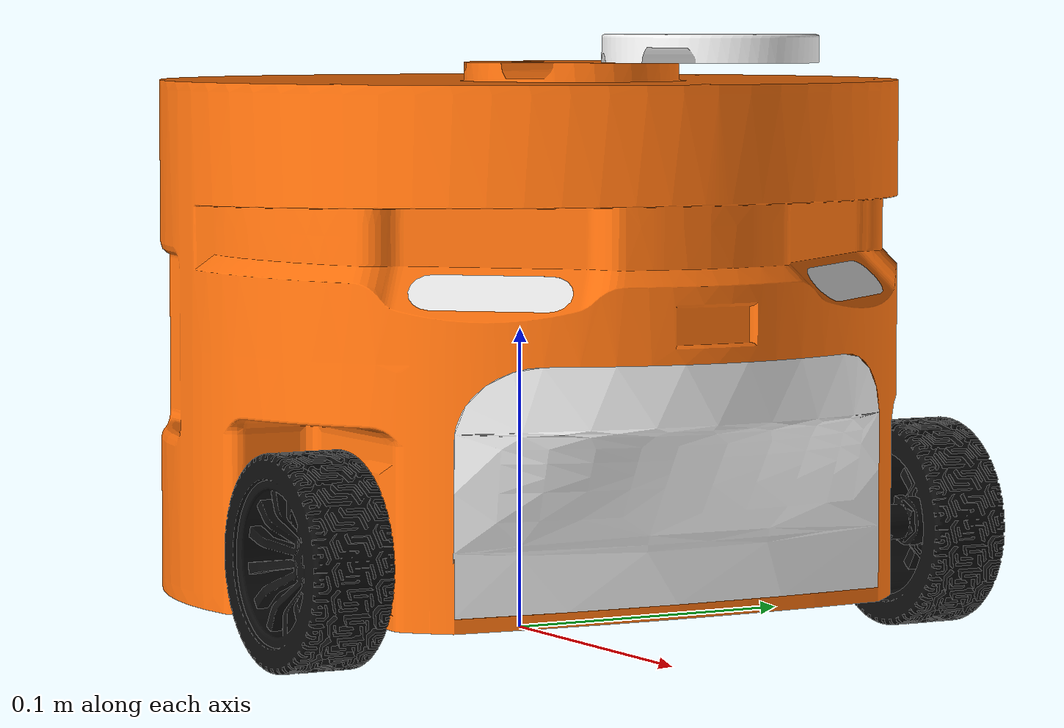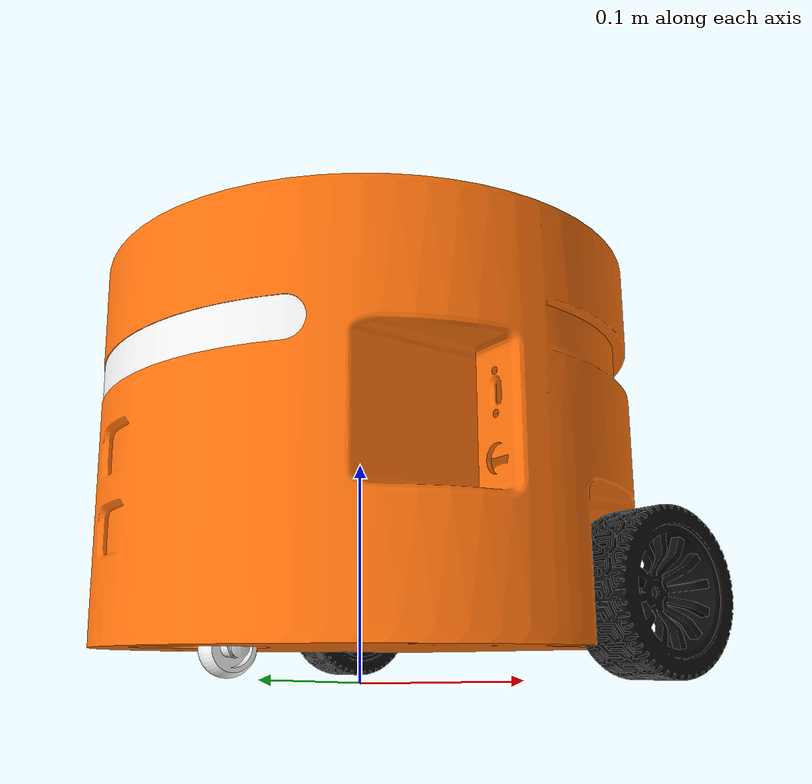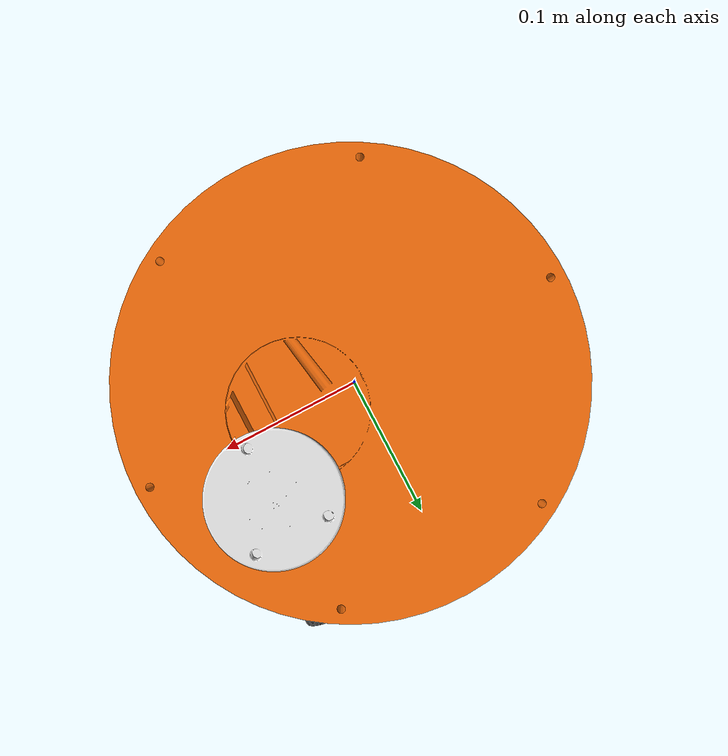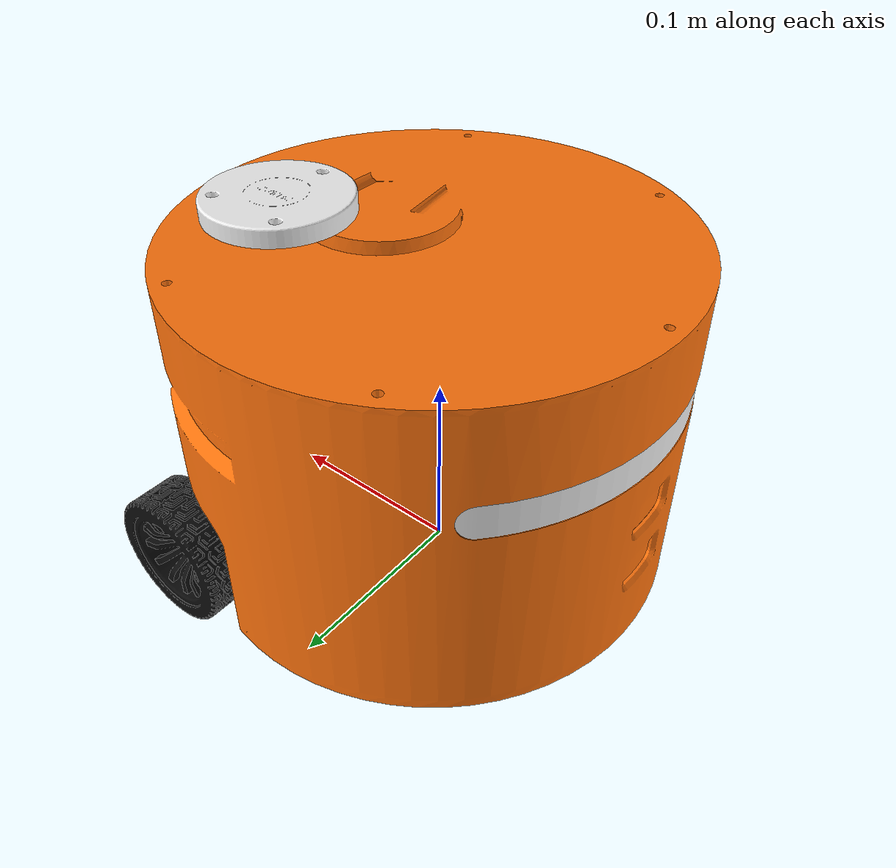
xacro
<?xml version="1.0" ?>
<robot name="NavProMini" xmlns:xacro="http://www.ros.org/wiki/xacro">

  <xacro:include filename="$(find navpromini_description)/urdf/materials.xacro" />
  <xacro:include filename="$(find navpromini_description)/urdf/NavProMini.trans" />

  <!-- Motor limits: 10 kg.cm = 0.981 N.m, 300 RPM = 31.416 rad/s -->
  <xacro:property name="motor_effort" value="0.981"/>
  <xacro:property name="motor_velocity" value="31.416"/>
  <xacro:property name="wheel_radius" value="0.0325"/>  <!-- 65 mm diameter -->
  <xacro:property name="wheel_width" value="0.028"/>

  <!-- Multi-robot Gazebo: launch passes topic_prefix:=/robot1 frame_prefix:=robot1/
       Single-robot defaults keep absolute /cmd_vel, /odom, /scan. -->
  <xacro:arg name="robot_namespace" default=""/>
  <xacro:arg name="topic_prefix" default=""/>
  <xacro:arg name="frame_prefix" default=""/>
  <xacro:property name="topic_prefix" value="$(arg topic_prefix)"/>
  <xacro:property name="frame_prefix" value="$(arg frame_prefix)"/>

  <!-- Lidar pose in base_link (+X forward). Yaw is tunable at launch:
       xacro ... lidar_yaw:=±1.5708 if /scan is 90° off vs driving direction. -->
  <xacro:arg name="lidar_yaw" default="0.0"/>
  <xacro:property name="lidar_yaw" value="$(arg lidar_yaw)"/>

  <!-- After topic/frame prefix properties so NavProMini.gazebo can use them. -->
  <xacro:include filename="$(find navpromini_description)/urdf/NavProMini.gazebo" />
  <!-- chassis joint origin (0.001341, -0.032462, 0.188795) rotated by +90° yaw -->
  <xacro:property name="lidar_x" value="0.032462"/>
  <xacro:property name="lidar_y" value="0.001341"/>
  <xacro:property name="lidar_z" value="0.188795"/>

  <!-- ROS base_link: +X forward, +Y left. Mass lives here for stable physics. -->
  <link name="base_link">
    <inertial>
      <!-- Between drive wheels (x≈0.067) and rear caster (x≈-0.074) -->
      <origin xyz="0.02 0.0 0.05" rpy="0 0 0"/>
      <!-- Half mass for smoother Gazebo multi-robot sim -->
      <mass value="2.5"/>
      <inertia ixx="0.02" iyy="0.02" izz="0.025" ixy="0.0" iyz="0.0" ixz="0.0"/>
    </inertial>
  </link>

  <!-- CAD mesh; rotated so CAD -Y (front) aligns with base_link +X -->
  <link name="chassis">
    <inertial>
      <origin xyz="0 0 0" rpy="0 0 0"/>
      <mass value="0.01"/>
      <inertia ixx="1e-6" iyy="1e-6" izz="1e-6" ixy="0" iyz="0" ixz="0"/>
    </inertial>
    <visual>
      <origin xyz="0 0 0" rpy="0 0 0"/>
      <geometry>
        <mesh filename="package://navpromini_description/meshes/base_link.stl" scale="0.001 0.001 0.001"/>
      </geometry>
      <material name="orange"/>
    </visual>
    <collision>
      <origin xyz="0 0 0" rpy="0 0 0"/>
      <geometry>
        <mesh filename="package://navpromini_description/meshes/base_link.stl" scale="0.001 0.001 0.001"/>
      </geometry>
    </collision>
  </link>

  <joint name="chassis_joint" type="fixed">
    <parent link="base_link"/>
    <child link="chassis"/>
    <origin xyz="0 0 0" rpy="0 0 1.57079632679"/>
  </joint>

  <link name="leftWheel_1">
    <inertial>
      <origin xyz="0 0 0" rpy="0 0 0"/>
      <mass value="0.05"/>
      <inertia ixx="1.4e-05" iyy="2.4e-05" izz="1.4e-05" ixy="0" iyz="0" ixz="0"/>
    </inertial>
    <visual>
      <origin xyz="-0.09484 0.066804 -0.036326" rpy="0 0 0"/>
      <geometry>
        <mesh filename="package://navpromini_description/meshes/leftWheel_1.stl" scale="0.001 0.001 0.001"/>
      </geometry>
      <material name="black"/>
    </visual>
    <!-- Wheels: cylinder collision only (not mesh) -->
    <collision>
      <origin xyz="0 0 0" rpy="0 1.57079632679 0"/>
      <geometry>
        <cylinder radius="${wheel_radius}" length="${wheel_width}"/>
      </geometry>
    </collision>
  </link>

  <link name="rightWheel_1">
    <inertial>
      <origin xyz="0 0 0" rpy="0 0 0"/>
      <mass value="0.05"/>
      <inertia ixx="1.4e-05" iyy="2.4e-05" izz="1.4e-05" ixy="0" iyz="0" ixz="0"/>
    </inertial>
    <visual>
      <origin xyz="0.092161 0.066804 -0.036326" rpy="0 0 0"/>
      <geometry>
        <mesh filename="package://navpromini_description/meshes/rightWheel_1.stl" scale="0.001 0.001 0.001"/>
      </geometry>
      <material name="black"/>
    </visual>
    <collision>
      <origin xyz="0 0 0" rpy="0 1.57079632679 0"/>
      <geometry>
        <cylinder radius="${wheel_radius}" length="${wheel_width}"/>
      </geometry>
    </collision>
  </link>

  <link name="casterWheel_1">
    <inertial>
      <origin xyz="-0.061875 0.147397 -0.028272" rpy="0 0 0"/>
      <mass value="0.05"/>
      <inertia ixx="1e-5" iyy="1e-5" izz="1e-5" ixy="0" iyz="0" ixz="0"/>
    </inertial>
    <visual>
      <origin xyz="-0.063216 0.073146 -0.050051" rpy="0 0 0"/>
      <geometry>
        <mesh filename="package://navpromini_description/meshes/casterWheel_1.stl" scale="0.001 0.001 0.001"/>
      </geometry>
      <material name="white"/>
    </visual>
    <collision>
      <origin xyz="-0.063216 0.073146 -0.050051" rpy="0 0 0"/>
      <geometry>
        <mesh filename="package://navpromini_description/meshes/casterWheel_1.stl" scale="0.001 0.001 0.001"/>
      </geometry>
    </collision>
  </link>

  <link name="FLLC_1">
    <inertial>
      <origin xyz="0 0 0" rpy="0 0 0"/>
      <mass value="0.001"/>
      <inertia ixx="1e-9" iyy="1e-9" izz="1e-9" ixy="0" iyz="0" ixz="0"/>
    </inertial>
    <visual>
      <origin xyz="-0.064518 0.094734 -0.11683" rpy="0 0 0"/>
      <geometry>
        <mesh filename="package://navpromini_description/meshes/FLLC_1.stl" scale="0.001 0.001 0.001"/>
      </geometry>
      <material name="white"/>
    </visual>
    <collision>
      <origin xyz="-0.064518 0.094734 -0.11683" rpy="0 0 0"/>
      <geometry>
        <mesh filename="package://navpromini_description/meshes/FLLC_1.stl" scale="0.001 0.001 0.001"/>
      </geometry>
    </collision>
  </link>

  <link name="FRLC_1">
    <inertial>
      <origin xyz="0 0 0" rpy="0 0 0"/>
      <mass value="0.001"/>
      <inertia ixx="1e-9" iyy="1e-9" izz="1e-9" ixy="0" iyz="0" ixz="0"/>
    </inertial>
    <visual>
      <origin xyz="0.058447 0.090812 -0.122003" rpy="0 0 0"/>
      <geometry>
        <mesh filename="package://navpromini_description/meshes/FRLC_1.stl" scale="0.001 0.001 0.001"/>
      </geometry>
      <material name="white"/>
    </visual>
    <collision>
      <origin xyz="0.058447 0.090812 -0.122003" rpy="0 0 0"/>
      <geometry>
        <mesh filename="package://navpromini_description/meshes/FRLC_1.stl" scale="0.001 0.001 0.001"/>
      </geometry>
    </collision>
  </link>

  <link name="BLC_1">
    <inertial>
      <origin xyz="0 0 0" rpy="0 0 0"/>
      <mass value="0.001"/>
      <inertia ixx="1e-9" iyy="1e-9" izz="1e-9" ixy="0" iyz="0" ixz="0"/>
    </inertial>
    <visual>
      <origin xyz="-0.001742 -0.114701 -0.137576" rpy="0 0 0"/>
      <geometry>
        <mesh filename="package://navpromini_description/meshes/BLC_1.stl" scale="0.001 0.001 0.001"/>
      </geometry>
      <material name="white"/>
    </visual>
    <collision>
      <origin xyz="-0.001742 -0.114701 -0.137576" rpy="0 0 0"/>
      <geometry>
        <mesh filename="package://navpromini_description/meshes/BLC_1.stl" scale="0.001 0.001 0.001"/>
      </geometry>
    </collision>
  </link>

  <link name="lidar_1">
    <inertial>
      <origin xyz="0 0 0" rpy="0 0 0"/>
      <mass value="0.03"/>
      <inertia ixx="1e-5" iyy="1e-5" izz="2e-05" ixy="0" iyz="0" ixz="0"/>
    </inertial>
    <!-- Mesh is CAD/chassis-oriented; rotate +90° so it matches chassis visual. -->
    <visual>
      <origin xyz="-0.001341 0.032462 -0.188795" rpy="0 0 1.57079632679"/>
      <geometry>
        <mesh filename="package://navpromini_description/meshes/lidar_1.stl" scale="0.001 0.001 0.001"/>
      </geometry>
      <material name="white"/>
    </visual>
    <collision>
      <origin xyz="-0.001341 0.032462 -0.188795" rpy="0 0 1.57079632679"/>
      <geometry>
        <mesh filename="package://navpromini_description/meshes/lidar_1.stl" scale="0.001 0.001 0.001"/>
      </geometry>
    </collision>
  </link>

  <link name="FC_1">
    <inertial>
      <origin xyz="0 0 0" rpy="0 0 0"/>
      <mass value="0.01"/>
      <inertia ixx="1e-5" iyy="1e-5" izz="1e-5" ixy="0" iyz="0" ixz="0"/>
    </inertial>
    <visual>
      <origin xyz="-0.001341 0.12528 -0.097326" rpy="0 0 0"/>
      <geometry>
        <mesh filename="package://navpromini_description/meshes/FC_1.stl" scale="0.001 0.001 0.001"/>
      </geometry>
      <material name="white"/>
    </visual>
    <collision>
      <origin xyz="-0.001341 0.12528 -0.097326" rpy="0 0 0"/>
      <geometry>
        <mesh filename="package://navpromini_description/meshes/FC_1.stl" scale="0.001 0.001 0.001"/>
      </geometry>
    </collision>
  </link>

  <!-- Axis +X: +cmd_vel.linear.x matches robot forward (base_link +X) -->
  <joint name="LeftWheelJoint" type="continuous">
    <origin xyz="0.09484 -0.066804 0.036326" rpy="0 0 0"/>
    <parent link="chassis"/>
    <child link="leftWheel_1"/>
    <axis xyz="1 0 0"/>
    <limit effort="${motor_effort}" velocity="${motor_velocity}"/>
    <dynamics damping="0.01" friction="0.0"/>
  </joint>

  <joint name="RightWheelJoint" type="continuous">
    <origin xyz="-0.092161 -0.066804 0.036326" rpy="0 0 0"/>
    <parent link="chassis"/>
    <child link="rightWheel_1"/>
    <axis xyz="1 0 0"/>
    <limit effort="${motor_effort}" velocity="${motor_velocity}"/>
    <dynamics damping="0.01" friction="0.0"/>
  </joint>

  <joint name="CastorJoint" type="fixed">
    <origin xyz="0.063216 -0.073146 0.050051" rpy="0 0 0"/>
    <parent link="chassis"/>
    <child link="casterWheel_1"/>
  </joint>

  <joint name="Rigid1" type="fixed">
    <origin xyz="0.064518 -0.094734 0.11683" rpy="0 0 0"/>
    <parent link="chassis"/>
    <child link="FLLC_1"/>
  </joint>

  <joint name="Rigid2" type="fixed">
    <origin xyz="-0.058447 -0.090812 0.122003" rpy="0 0 0"/>
    <parent link="chassis"/>
    <child link="FRLC_1"/>
  </joint>

  <joint name="Rigid4" type="fixed">
    <origin xyz="0.001742 0.114701 0.137576" rpy="0 0 0"/>
    <parent link="chassis"/>
    <child link="BLC_1"/>
  </joint>

  <!-- Optical frame on base_link (not chassis): scan 0° = base +X = drive forward.
       Parenting under chassis inherited CAD +90° yaw and smeared SLAM maps. -->
  <joint name="LidarJoint" type="fixed">
    <origin xyz="${lidar_x} ${lidar_y} ${lidar_z}" rpy="0 0 ${lidar_yaw}"/>
    <parent link="base_link"/>
    <child link="lidar_1"/>
  </joint>

  <joint name="FC_joint" type="fixed">
    <origin xyz="0.001341 -0.12528 0.097326" rpy="0 0 0"/>
    <parent link="chassis"/>
    <child link="FC_1"/>
  </joint>

  <!-- QMI8658 + AK09918C on Waveshare General Driver; axes remapped in firmware to REP-103 -->
  <link name="imu_link">
    <inertial>
      <origin xyz="0 0 0" rpy="0 0 0"/>
      <mass value="0.001"/>
      <inertia ixx="1e-6" iyy="1e-6" izz="1e-6" ixy="0" iyz="0" ixz="0"/>
    </inertial>
  </link>

  <joint name="imu_joint" type="fixed">
    <origin xyz="0 0 0.08" rpy="0 0 0"/>
    <parent link="base_link"/>
    <child link="imu_link"/>
  </joint>

</robot>

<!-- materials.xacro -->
<robot name="NavProMini" xmlns:xacro="http://www.ros.org/wiki/xacro">

  <!-- RViz materials: body orange, wheels black, remaining white -->
  <material name="orange">
    <color rgba="1.0 0.45 0.05 1.0"/>
  </material>

  <material name="black">
    <color rgba="0.05 0.05 0.05 1.0"/>
  </material>

  <material name="white">
    <color rgba="0.95 0.95 0.95 1.0"/>
  </material>

</robot>

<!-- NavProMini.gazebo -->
<robot name="NavProMini" xmlns:xacro="http://www.ros.org/wiki/xacro">

  <!-- Physical parameters
       Wheel: 65 mm diameter → radius 0.0325 m
       Track: 22.5 cm → 0.225 m (must match firmware + odom)
  -->
  <xacro:property name="wheel_radius" value="0.0325"/>
  <xacro:property name="wheel_separation" value="0.225"/>
  <!-- Doubled for faster RMF sim (must stay ≥ Nav2 + fleet limits) -->
  <xacro:property name="max_linear_velocity" value="1.2"/>
  <xacro:property name="max_angular_velocity" value="5.0"/>

  <gazebo reference="chassis">
    <visual>
      <material>
        <ambient>1.0 0.40 0.0 1</ambient>
        <diffuse>1.0 0.45 0.05 1</diffuse>
        <specular>0.2 0.1 0.05 1</specular>
        <emissive>0 0 0 1</emissive>
      </material>
    </visual>
    <mu1>0.2</mu1>
    <mu2>0.2</mu2>
    <self_collide>false</self_collide>
  </gazebo>

  <gazebo reference="leftWheel_1">
    <visual>
      <material>
        <ambient>0.05 0.05 0.05 1</ambient>
        <diffuse>0.05 0.05 0.05 1</diffuse>
        <specular>0.1 0.1 0.1 1</specular>
      </material>
    </visual>
    <mu1>1.5</mu1>
    <mu2>1.5</mu2>
    <kp>1e6</kp>
    <kd>1.0</kd>
    <minDepth>0.001</minDepth>
    <maxContacts>8</maxContacts>
    <self_collide>false</self_collide>
  </gazebo>

  <gazebo reference="rightWheel_1">
    <visual>
      <material>
        <ambient>0.05 0.05 0.05 1</ambient>
        <diffuse>0.05 0.05 0.05 1</diffuse>
        <specular>0.1 0.1 0.1 1</specular>
      </material>
    </visual>
    <mu1>1.5</mu1>
    <mu2>1.5</mu2>
    <kp>1e6</kp>
    <kd>1.0</kd>
    <minDepth>0.001</minDepth>
    <maxContacts>8</maxContacts>
    <self_collide>false</self_collide>
  </gazebo>

  <gazebo reference="casterWheel_1">
    <visual>
      <material>
        <ambient>0.95 0.95 0.95 1</ambient>
        <diffuse>0.95 0.95 0.95 1</diffuse>
        <specular>0.3 0.3 0.3 1</specular>
      </material>
    </visual>
    <!-- Slippery caster: supports weight but does not fight diff-drive -->
    <mu1>0.01</mu1>
    <mu2>0.01</mu2>
    <slip1>1.0</slip1>
    <slip2>1.0</slip2>
    <kp>1e6</kp>
    <kd>1.0</kd>
    <minDepth>0.001</minDepth>
    <maxContacts>4</maxContacts>
    <self_collide>false</self_collide>
  </gazebo>

  <gazebo reference="FLLC_1">
    <visual>
      <material>
        <ambient>0.95 0.95 0.95 1</ambient>
        <diffuse>0.95 0.95 0.95 1</diffuse>
      </material>
    </visual>
  </gazebo>

  <gazebo reference="FRLC_1">
    <visual>
      <material>
        <ambient>0.95 0.95 0.95 1</ambient>
        <diffuse>0.95 0.95 0.95 1</diffuse>
      </material>
    </visual>
  </gazebo>

  <gazebo reference="BLC_1">
    <visual>
      <material>
        <ambient>0.95 0.95 0.95 1</ambient>
        <diffuse>0.95 0.95 0.95 1</diffuse>
      </material>
    </visual>
  </gazebo>

  <gazebo reference="FC_1">
    <visual>
      <material>
        <ambient>0.95 0.95 0.95 1</ambient>
        <diffuse>0.95 0.95 0.95 1</diffuse>
      </material>
    </visual>
  </gazebo>

  <!-- RPLIDAR A1M8 -->
  <gazebo reference="lidar_1">
    <visual>
      <material>
        <ambient>0.95 0.95 0.95 1</ambient>
        <diffuse>0.95 0.95 0.95 1</diffuse>
        <specular>0.4 0.4 0.4 1</specular>
      </material>
    </visual>
    <sensor name="rplidar_a1m8" type="gpu_lidar">
      <always_on>true</always_on>
      <visualize>true</visualize>
      <update_rate>5.5</update_rate>
      <topic>${topic_prefix}/scan</topic>
      <gz_frame_id>${frame_prefix}lidar_1</gz_frame_id>
      <lidar>
        <scan>
          <horizontal>
            <samples>360</samples>
            <resolution>1</resolution>
            <min_angle>0.0</min_angle>
            <max_angle>6.28318530718</max_angle>
          </horizontal>
        </scan>
        <range>
          <!-- Was 0.35 — clipped near walls/doors for this small base. -->
          <min>0.12</min>
          <max>12.0</max>
          <resolution>0.01</resolution>
        </range>
        <noise>
          <type>gaussian</type>
          <mean>0.0</mean>
          <stddev>0.01</stddev>
        </noise>
      </lidar>
    </sensor>
  </gazebo>

  <gazebo>
    <!-- Drive from ${topic_prefix}/cmd_vel (e.g. /cmd_vel or /robot1/cmd_vel).
         Wheel odom only (no TF) — TF comes from ground-truth pose. -->
    <plugin filename="gz-sim-diff-drive-system"
            name="gz::sim::systems::DiffDrive">
      <left_joint>LeftWheelJoint</left_joint>
      <right_joint>RightWheelJoint</right_joint>
      <wheel_separation>${wheel_separation}</wheel_separation>
      <wheel_radius>${wheel_radius}</wheel_radius>
      <max_linear_acceleration>1.0</max_linear_acceleration>
      <min_linear_acceleration>-1.0</min_linear_acceleration>
      <max_angular_acceleration>2.0</max_angular_acceleration>
      <min_angular_acceleration>-2.0</min_angular_acceleration>
      <max_linear_velocity>${max_linear_velocity}</max_linear_velocity>
      <min_linear_velocity>${-1.0 * max_linear_velocity}</min_linear_velocity>
      <max_angular_velocity>${max_angular_velocity}</max_angular_velocity>
      <min_angular_velocity>${-1.0 * max_angular_velocity}</min_angular_velocity>
      <topic>${topic_prefix}/cmd_vel</topic>
      <odom_topic>${topic_prefix}/odom_wheels</odom_topic>
      <frame_id>${frame_prefix}odom</frame_id>
      <child_frame_id>${frame_prefix}base_link</child_frame_id>
      <odom_publish_frequency>50</odom_publish_frequency>
    </plugin>

    <!-- Ground-truth odom + TF from actual Gazebo pose (keeps LaserScan locked in RViz) -->
    <plugin filename="gz-sim-odometry-publisher-system"
            name="gz::sim::systems::OdometryPublisher">
      <odom_frame>${frame_prefix}odom</odom_frame>
      <robot_base_frame>${frame_prefix}base_link</robot_base_frame>
      <odom_topic>${topic_prefix}/odom</odom_topic>
      <tf_topic>${topic_prefix}/tf</tf_topic>
      <odom_publish_frequency>50</odom_publish_frequency>
    </plugin>

    <plugin filename="gz-sim-joint-state-publisher-system"
            name="gz::sim::systems::JointStatePublisher">
      <joint_name>LeftWheelJoint</joint_name>
      <joint_name>RightWheelJoint</joint_name>
      <topic>${topic_prefix}/joint_states</topic>
      <update_rate>50</update_rate>
    </plugin>
  </gazebo>

</robot>
